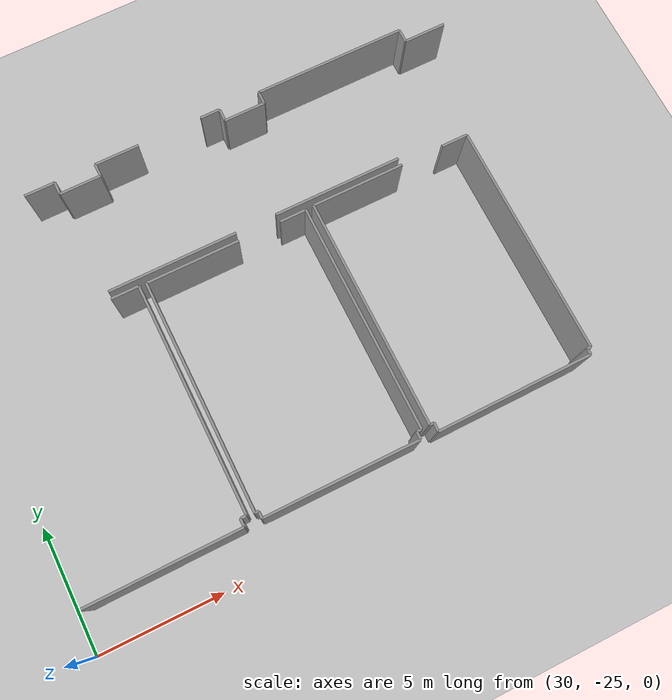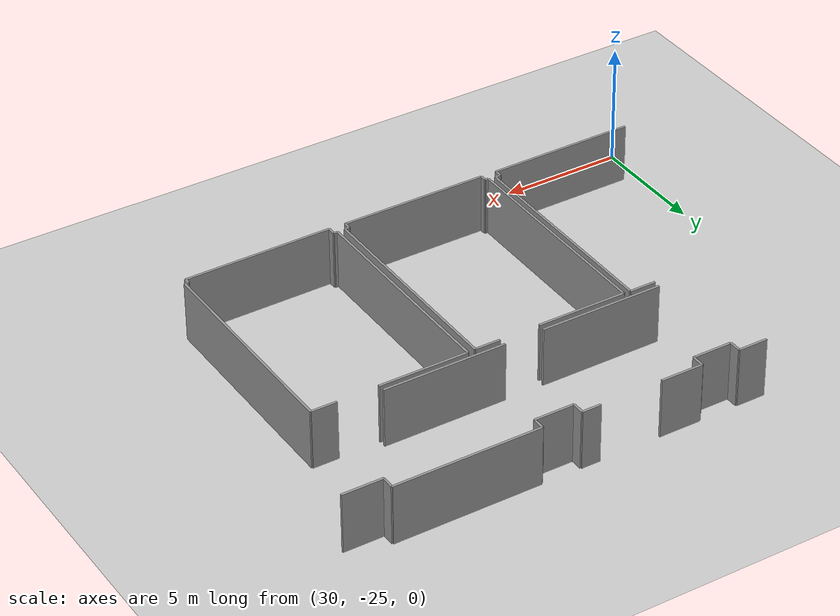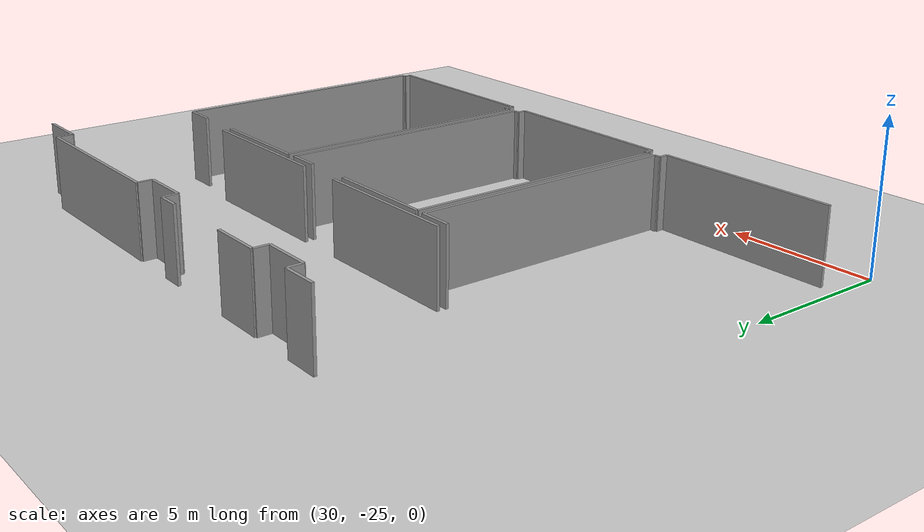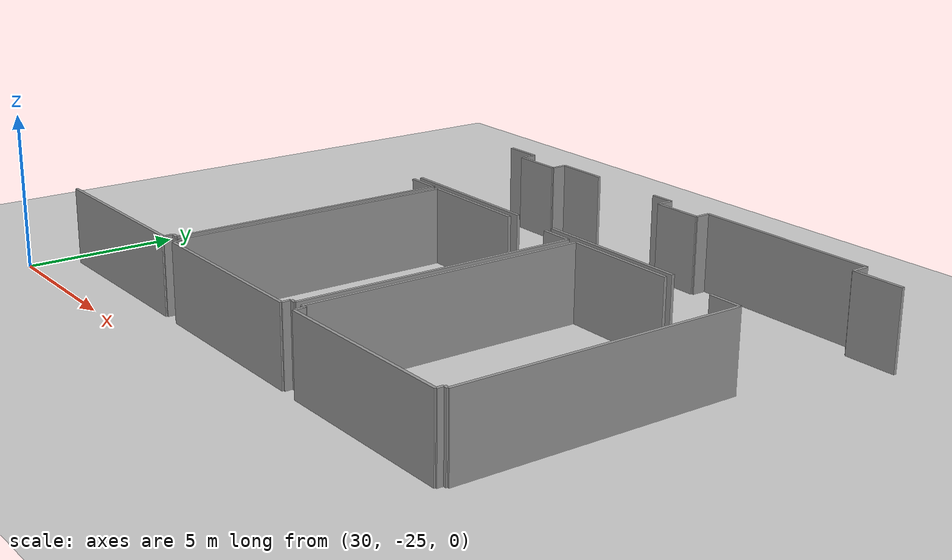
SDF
<sdf version="1.6">
 <world name="default">
  <model name="ground_plane">
   <static>1</static>
   <link name="link">
    <collision name="collision">
     <geometry><plane><normal>0 0 1</normal><size>100 100</size></plane></geometry>
     <surface><friction><ode><mu>100</mu><mu2>50</mu2></ode></friction></surface>
    </collision>
    <visual name="visual">
     <cast_shadows>0</cast_shadows>
     <geometry><plane><normal>0 0 1</normal><size>100 100</size></plane></geometry>
     <material>
      <script><uri>file://media/materials/scripts/gazebo.material</uri><name>Gazebo/Grey</name></script>
     </material>
    </visual>
   </link>
  </model>
  <model name="0510032194_A_40_1_202">
   <static>1</static>
   <link name="Wall_184">
    <collision name="Wall_184_Collision">
     <geometry><box><size>1.10249522104 0.1 2.5</size></box></geometry>
     <pose>0.551247610519 0 1.25 0 0 0</pose>
    </collision>
    <visual name="Wall_184_Visual">
     <pose>0.551247610519 0 1.25 0 0 0</pose>
     <geometry><box><size>1.10249522104 0.1 2.5</size></box></geometry>
     <material>
      <script><uri>file://media/materials/scripts/gazebo.material</uri><name>Gazebo/Grey</name></script>
      <ambient>1 1 1 1</ambient>
     </material>
    </visual>
    <pose>96.7030566299 -37.3895758315 0 0 0 0.0</pose>
   </link>
   <link name="Wall_185">
    <collision name="Wall_185_Collision">
     <geometry><box><size>9.17027073371 0.1 2.5</size></box></geometry>
     <pose>4.58513536685 0 1.25 0 0 0</pose>
    </collision>
    <visual name="Wall_185_Visual">
     <pose>4.58513536685 0 1.25 0 0 0</pose>
     <geometry><box><size>9.17027073371 0.1 2.5</size></box></geometry>
     <material>
      <script><uri>file://media/materials/scripts/gazebo.material</uri><name>Gazebo/Grey</name></script>
      <ambient>1 1 1 1</ambient>
     </material>
    </visual>
    <pose>97.8055518509 -37.3895758315 0 0 0 -1.57079632679</pose>
   </link>
   <link name="Wall_186">
    <collision name="Wall_186_Collision">
     <geometry><box><size>0.233835679946 0.1 2.5</size></box></geometry>
     <pose>0.116917839973 0 1.25 0 0 0</pose>
    </collision>
    <visual name="Wall_186_Visual">
     <pose>0.116917839973 0 1.25 0 0 0</pose>
     <geometry><box><size>0.233835679946 0.1 2.5</size></box></geometry>
     <material>
      <script><uri>file://media/materials/scripts/gazebo.material</uri><name>Gazebo/Grey</name></script>
      <ambient>1 1 1 1</ambient>
     </material>
    </visual>
    <pose>97.8055518509 -46.5598465652 0 0 0 3.14159265359</pose>
   </link>
   <link name="Wall_187">
    <collision name="Wall_187_Collision">
     <geometry><box><size>0.319571195407 0.1 2.5</size></box></geometry>
     <pose>0.159785597704 0 1.25 0 0 0</pose>
    </collision>
    <visual name="Wall_187_Visual">
     <pose>0.159785597704 0 1.25 0 0 0</pose>
     <geometry><box><size>0.319571195407 0.1 2.5</size></box></geometry>
     <material>
      <script><uri>file://media/materials/scripts/gazebo.material</uri><name>Gazebo/Grey</name></script>
      <ambient>1 1 1 1</ambient>
     </material>
    </visual>
    <pose>97.571716171 -46.5598465652 0 0 0 -1.57079632679</pose>
   </link>
   <link name="Wall_188">
    <collision name="Wall_188_Collision">
     <geometry><box><size>6.13553011448 0.1 2.5</size></box></geometry>
     <pose>3.06776505724 0 1.25 0 0 0</pose>
    </collision>
    <visual name="Wall_188_Visual">
     <pose>3.06776505724 0 1.25 0 0 0</pose>
     <geometry><box><size>6.13553011448 0.1 2.5</size></box></geometry>
     <material>
      <script><uri>file://media/materials/scripts/gazebo.material</uri><name>Gazebo/Grey</name></script>
      <ambient>1 1 1 1</ambient>
     </material>
    </visual>
    <pose>97.571716171 -46.8794177606 0 0 0 -3.13786634851</pose>
   </link>
   <link name="Wall_189">
    <collision name="Wall_189_Collision">
     <geometry><box><size>0.276131867574 0.1 2.5</size></box></geometry>
     <pose>0.138065933787 0 1.25 0 0 0</pose>
    </collision>
    <visual name="Wall_189_Visual">
     <pose>0.138065933787 0 1.25 0 0 0</pose>
     <geometry><box><size>0.276131867574 0.1 2.5</size></box></geometry>
     <material>
      <script><uri>file://media/materials/scripts/gazebo.material</uri><name>Gazebo/Grey</name></script>
      <ambient>1 1 1 1</ambient>
     </material>
    </visual>
    <pose>98.2389290046 -46.886530633 0 0 0 1.57079632679</pose>
   </link>
   <link name="Wall_190">
    <collision name="Wall_190_Collision">
     <geometry><box><size>0.143654619239 0.1 2.5</size></box></geometry>
     <pose>0.0718273096195 0 1.25 0 0 0</pose>
    </collision>
    <visual name="Wall_190_Visual">
     <pose>0.0718273096195 0 1.25 0 0 0</pose>
     <geometry><box><size>0.143654619239 0.1 2.5</size></box></geometry>
     <material>
      <script><uri>file://media/materials/scripts/gazebo.material</uri><name>Gazebo/Grey</name></script>
      <ambient>1 1 1 1</ambient>
     </material>
    </visual>
    <pose>98.2389290046 -46.6103987654 0 0 0 3.14159265359</pose>
   </link>
   <link name="Wall_191">
    <collision name="Wall_191_Collision">
     <geometry><box><size>9.19707102076 0.1 2.5</size></box></geometry>
     <pose>4.59853551038 0 1.25 0 0 0</pose>
    </collision>
    <visual name="Wall_191_Visual">
     <pose>4.59853551038 0 1.25 0 0 0</pose>
     <geometry><box><size>9.19707102076 0.1 2.5</size></box></geometry>
     <material>
      <script><uri>file://media/materials/scripts/gazebo.material</uri><name>Gazebo/Grey</name></script>
      <ambient>1 1 1 1</ambient>
     </material>
    </visual>
    <pose>98.0952743854 -46.6103987654 0 0 0 1.57079632679</pose>
   </link>
   <link name="Wall_192">
    <collision name="Wall_192_Collision">
     <geometry><box><size>3.7327338198 0.1 2.5</size></box></geometry>
     <pose>1.8663669099 0 1.25 0 0 0</pose>
    </collision>
    <visual name="Wall_192_Visual">
     <pose>1.8663669099 0 1.25 0 0 0</pose>
     <geometry><box><size>3.7327338198 0.1 2.5</size></box></geometry>
     <material>
      <script><uri>file://media/materials/scripts/gazebo.material</uri><name>Gazebo/Grey</name></script>
      <ambient>1 1 1 1</ambient>
     </material>
    </visual>
    <pose>98.0952743854 -37.4133277446 0 0 0 0.0</pose>
   </link>
   <link name="Wall_193">
    <collision name="Wall_193_Collision">
     <geometry><box><size>1.06070709573 0.1 2.5</size></box></geometry>
     <pose>0.530353547863 0 1.25 0 0 0</pose>
    </collision>
    <visual name="Wall_193_Visual">
     <pose>0.530353547863 0 1.25 0 0 0</pose>
     <geometry><box><size>1.06070709573 0.1 2.5</size></box></geometry>
     <material>
      <script><uri>file://media/materials/scripts/gazebo.material</uri><name>Gazebo/Grey</name></script>
      <ambient>1 1 1 1</ambient>
     </material>
    </visual>
    <pose>103.526206489 -37.4133277446 0 0 0 0.0</pose>
   </link>
   <link name="Wall_194">
    <collision name="Wall_194_Collision">
     <geometry><box><size>9.1720489518 0.1 2.5</size></box></geometry>
     <pose>4.5860244759 0 1.25 0 0 0</pose>
    </collision>
    <visual name="Wall_194_Visual">
     <pose>4.5860244759 0 1.25 0 0 0</pose>
     <geometry><box><size>9.1720489518 0.1 2.5</size></box></geometry>
     <material>
      <script><uri>file://media/materials/scripts/gazebo.material</uri><name>Gazebo/Grey</name></script>
      <ambient>1 1 1 1</ambient>
     </material>
    </visual>
    <pose>104.586913585 -37.4133277446 0 0 0 -1.57079632679</pose>
   </link>
   <link name="Wall_195">
    <collision name="Wall_195_Collision">
     <geometry><box><size>0.194587866202 0.1 2.5</size></box></geometry>
     <pose>0.0972939331009 0 1.25 0 0 0</pose>
    </collision>
    <visual name="Wall_195_Visual">
     <pose>0.0972939331009 0 1.25 0 0 0</pose>
     <geometry><box><size>0.194587866202 0.1 2.5</size></box></geometry>
     <material>
      <script><uri>file://media/materials/scripts/gazebo.material</uri><name>Gazebo/Grey</name></script>
      <ambient>1 1 1 1</ambient>
     </material>
    </visual>
    <pose>104.586913585 -46.5853766965 0 0 0 3.14159265359</pose>
   </link>
   <link name="Wall_196">
    <collision name="Wall_196_Collision">
     <geometry><box><size>0.297724515912 0.1 2.5</size></box></geometry>
     <pose>0.148862257956 0 1.25 0 0 0</pose>
    </collision>
    <visual name="Wall_196_Visual">
     <pose>0.148862257956 0 1.25 0 0 0</pose>
     <geometry><box><size>0.297724515912 0.1 2.5</size></box></geometry>
     <material>
      <script><uri>file://media/materials/scripts/gazebo.material</uri><name>Gazebo/Grey</name></script>
      <ambient>1 1 1 1</ambient>
     </material>
    </visual>
    <pose>104.392325719 -46.5853766965 0 0 0 -1.57079632679</pose>
   </link>
   <link name="Wall_197">
    <collision name="Wall_197_Collision">
     <geometry><box><size>6.15339766975 0.1 2.5</size></box></geometry>
     <pose>3.07669883488 0 1.25 0 0 0</pose>
    </collision>
    <visual name="Wall_197_Visual">
     <pose>3.07669883488 0 1.25 0 0 0</pose>
     <geometry><box><size>6.15339766975 0.1 2.5</size></box></geometry>
     <material>
      <script><uri>file://media/materials/scripts/gazebo.material</uri><name>Gazebo/Grey</name></script>
      <ambient>1 1 1 1</ambient>
     </material>
    </visual>
    <pose>104.392325719 -46.8831012124 0 0 0 -3.14103533209</pose>
   </link>
   <link name="Wall_198">
    <collision name="Wall_198_Collision">
     <geometry><box><size>0.342942061844 0.1 2.5</size></box></geometry>
     <pose>0.171471030922 0 1.25 0 0 0</pose>
    </collision>
    <visual name="Wall_198_Visual">
     <pose>0.171471030922 0 1.25 0 0 0</pose>
     <geometry><box><size>0.342942061844 0.1 2.5</size></box></geometry>
     <material>
      <script><uri>file://media/materials/scripts/gazebo.material</uri><name>Gazebo/Grey</name></script>
      <ambient>1 1 1 1</ambient>
     </material>
    </visual>
    <pose>105.080623138 -46.915744216 0 0 0 1.57079632679</pose>
   </link>
   <link name="Wall_199">
    <collision name="Wall_199_Collision">
     <geometry><box><size>0.165120251999 0.1 2.5</size></box></geometry>
     <pose>0.0825601259995 0 1.25 0 0 0</pose>
    </collision>
    <visual name="Wall_199_Visual">
     <pose>0.0825601259995 0 1.25 0 0 0</pose>
     <geometry><box><size>0.165120251999 0.1 2.5</size></box></geometry>
     <material>
      <script><uri>file://media/materials/scripts/gazebo.material</uri><name>Gazebo/Grey</name></script>
      <ambient>1 1 1 1</ambient>
     </material>
    </visual>
    <pose>105.080623138 -46.5728021542 0 0 0 3.14159265359</pose>
   </link>
   <link name="Wall_200">
    <collision name="Wall_200_Collision">
     <geometry><box><size>9.18830694585 0.1 2.5</size></box></geometry>
     <pose>4.59415347292 0 1.25 0 0 0</pose>
    </collision>
    <visual name="Wall_200_Visual">
     <pose>4.59415347292 0 1.25 0 0 0</pose>
     <geometry><box><size>9.18830694585 0.1 2.5</size></box></geometry>
     <material>
      <script><uri>file://media/materials/scripts/gazebo.material</uri><name>Gazebo/Grey</name></script>
      <ambient>1 1 1 1</ambient>
     </material>
    </visual>
    <pose>104.915502886 -46.5728021542 0 0 0 1.57079632679</pose>
   </link>
   <link name="Wall_201">
    <collision name="Wall_201_Collision">
     <geometry><box><size>3.73146366402 0.1 2.5</size></box></geometry>
     <pose>1.86573183201 0 1.25 0 0 0</pose>
    </collision>
    <visual name="Wall_201_Visual">
     <pose>1.86573183201 0 1.25 0 0 0</pose>
     <geometry><box><size>3.73146366402 0.1 2.5</size></box></geometry>
     <material>
      <script><uri>file://media/materials/scripts/gazebo.material</uri><name>Gazebo/Grey</name></script>
      <ambient>1 1 1 1</ambient>
     </material>
    </visual>
    <pose>104.915502886 -37.3844952083 0 0 0 0.0</pose>
   </link>
   <link name="Wall_202">
    <collision name="Wall_202_Collision">
     <geometry><box><size>1.07137640432 0.1 2.5</size></box></geometry>
     <pose>0.535688202158 0 1.25 0 0 0</pose>
    </collision>
    <visual name="Wall_202_Visual">
     <pose>0.535688202158 0 1.25 0 0 0</pose>
     <geometry><box><size>1.07137640432 0.1 2.5</size></box></geometry>
     <material>
      <script><uri>file://media/materials/scripts/gazebo.material</uri><name>Gazebo/Grey</name></script>
      <ambient>1 1 1 1</ambient>
     </material>
    </visual>
    <pose>110.35507205 -37.3844952083 0 0 0 0.0</pose>
   </link>
   <link name="Wall_203">
    <collision name="Wall_203_Collision">
     <geometry><box><size>9.25181473508 0.1 2.5</size></box></geometry>
     <pose>4.62590736754 0 1.25 0 0 0</pose>
    </collision>
    <visual name="Wall_203_Visual">
     <pose>4.62590736754 0 1.25 0 0 0</pose>
     <geometry><box><size>9.25181473508 0.1 2.5</size></box></geometry>
     <material>
      <script><uri>file://media/materials/scripts/gazebo.material</uri><name>Gazebo/Grey</name></script>
      <ambient>1 1 1 1</ambient>
     </material>
    </visual>
    <pose>111.426448454 -37.3844952083 0 0 0 -1.57079632679</pose>
   </link>
   <link name="Wall_204">
    <collision name="Wall_204_Collision">
     <geometry><box><size>0.147465086593 0.1 2.5</size></box></geometry>
     <pose>0.0737325432964 0 1.25 0 0 0</pose>
    </collision>
    <visual name="Wall_204_Visual">
     <pose>0.0737325432964 0 1.25 0 0 0</pose>
     <geometry><box><size>0.147465086593 0.1 2.5</size></box></geometry>
     <material>
      <script><uri>file://media/materials/scripts/gazebo.material</uri><name>Gazebo/Grey</name></script>
      <ambient>1 1 1 1</ambient>
     </material>
    </visual>
    <pose>111.426448454 -46.6363099434 0 0 0 3.14159265359</pose>
   </link>
   <link name="Wall_205">
    <collision name="Wall_205_Collision">
     <geometry><box><size>0.238408240771 0.1 2.5</size></box></geometry>
     <pose>0.119204120385 0 1.25 0 0 0</pose>
    </collision>
    <visual name="Wall_205_Visual">
     <pose>0.119204120385 0 1.25 0 0 0</pose>
     <geometry><box><size>0.238408240771 0.1 2.5</size></box></geometry>
     <material>
      <script><uri>file://media/materials/scripts/gazebo.material</uri><name>Gazebo/Grey</name></script>
      <ambient>1 1 1 1</ambient>
     </material>
    </visual>
    <pose>111.278983367 -46.6363099434 0 0 0 -1.57079632679</pose>
   </link>
   <link name="Wall_206">
    <collision name="Wall_206_Collision">
     <geometry><box><size>6.19849600002 0.1 2.5</size></box></geometry>
     <pose>3.09924800001 0 1.25 0 0 0</pose>
    </collision>
    <visual name="Wall_206_Visual">
     <pose>3.09924800001 0 1.25 0 0 0</pose>
     <geometry><box><size>6.19849600002 0.1 2.5</size></box></geometry>
     <material>
      <script><uri>file://media/materials/scripts/gazebo.material</uri><name>Gazebo/Grey</name></script>
      <ambient>1 1 1 1</ambient>
     </material>
    </visual>
    <pose>111.278983367 -46.8747181842 0 0 0 -3.13497389778</pose>
   </link>
   <link name="Wall_386">
    <collision name="Wall_386_Collision">
     <geometry><box><size>1.21973059996 0.1 2.5</size></box></geometry>
     <pose>0.609865299979 0 1.25 0 0 0</pose>
    </collision>
    <visual name="Wall_386_Visual">
     <pose>0.609865299979 0 1.25 0 0 0</pose>
     <geometry><box><size>1.21973059996 0.1 2.5</size></box></geometry>
     <material>
      <script><uri>file://media/materials/scripts/gazebo.material</uri><name>Gazebo/Grey</name></script>
      <ambient>1 1 1 1</ambient>
     </material>
    </visual>
    <pose>95.3931449692 -32.2751665492 0 0 0 0.0</pose>
   </link>
   <link name="Wall_387">
    <collision name="Wall_387_Collision">
     <geometry><box><size>0.508951422892 0.1 2.5</size></box></geometry>
     <pose>0.254475711446 0 1.25 0 0 0</pose>
    </collision>
    <visual name="Wall_387_Visual">
     <pose>0.254475711446 0 1.25 0 0 0</pose>
     <geometry><box><size>0.508951422892 0.1 2.5</size></box></geometry>
     <material>
      <script><uri>file://media/materials/scripts/gazebo.material</uri><name>Gazebo/Grey</name></script>
      <ambient>1 1 1 1</ambient>
     </material>
    </visual>
    <pose>96.6128755692 -32.2751665492 0 0 0 -1.57079632679</pose>
   </link>
   <link name="Wall_388">
    <collision name="Wall_388_Collision">
     <geometry><box><size>1.65196461346 0.1 2.5</size></box></geometry>
     <pose>0.82598230673 0 1.25 0 0 0</pose>
    </collision>
    <visual name="Wall_388_Visual">
     <pose>0.82598230673 0 1.25 0 0 0</pose>
     <geometry><box><size>1.65196461346 0.1 2.5</size></box></geometry>
     <material>
      <script><uri>file://media/materials/scripts/gazebo.material</uri><name>Gazebo/Grey</name></script>
      <ambient>1 1 1 1</ambient>
     </material>
    </visual>
    <pose>96.6128755692 -32.7841179721 0 0 0 0.0</pose>
   </link>
   <link name="Wall_389">
    <collision name="Wall_389_Collision">
     <geometry><box><size>0.518604606855 0.1 2.5</size></box></geometry>
     <pose>0.259302303428 0 1.25 0 0 0</pose>
    </collision>
    <visual name="Wall_389_Visual">
     <pose>0.259302303428 0 1.25 0 0 0</pose>
     <geometry><box><size>0.518604606855 0.1 2.5</size></box></geometry>
     <material>
      <script><uri>file://media/materials/scripts/gazebo.material</uri><name>Gazebo/Grey</name></script>
      <ambient>1 1 1 1</ambient>
     </material>
    </visual>
    <pose>98.2648401826 -32.7841179721 0 0 0 1.57079632679</pose>
   </link>
   <link name="Wall_390">
    <collision name="Wall_390_Collision">
     <geometry><box><size>1.7744076311 0.1 2.5</size></box></geometry>
     <pose>0.887203815548 0 1.25 0 0 0</pose>
    </collision>
    <visual name="Wall_390_Visual">
     <pose>0.887203815548 0 1.25 0 0 0</pose>
     <geometry><box><size>1.7744076311 0.1 2.5</size></box></geometry>
     <material>
      <script><uri>file://media/materials/scripts/gazebo.material</uri><name>Gazebo/Grey</name></script>
      <ambient>1 1 1 1</ambient>
     </material>
    </visual>
    <pose>98.2648401826 -32.2655133652 0 0 0 0.0</pose>
   </link>
   <link name="Wall_391">
    <collision name="Wall_391_Collision">
     <geometry><box><size>0.79130705381 0.1 2.5</size></box></geometry>
     <pose>0.395653526905 0 1.25 0 0 0</pose>
    </collision>
    <visual name="Wall_391_Visual">
     <pose>0.395653526905 0 1.25 0 0 0</pose>
     <geometry><box><size>0.79130705381 0.1 2.5</size></box></geometry>
     <material>
      <script><uri>file://media/materials/scripts/gazebo.material</uri><name>Gazebo/Grey</name></script>
      <ambient>1 1 1 1</ambient>
     </material>
    </visual>
    <pose>102.641924032 -32.2655133652 0 0 0 0.0</pose>
   </link>
   <link name="Wall_392">
    <collision name="Wall_392_Collision">
     <geometry><box><size>0.514286077187 0.1 2.5</size></box></geometry>
     <pose>0.257143038594 0 1.25 0 0 0</pose>
    </collision>
    <visual name="Wall_392_Visual">
     <pose>0.257143038594 0 1.25 0 0 0</pose>
     <geometry><box><size>0.514286077187 0.1 2.5</size></box></geometry>
     <material>
      <script><uri>file://media/materials/scripts/gazebo.material</uri><name>Gazebo/Grey</name></script>
      <ambient>1 1 1 1</ambient>
     </material>
    </visual>
    <pose>103.433231086 -32.2655133652 0 0 0 -1.57079632679</pose>
   </link>
   <link name="Wall_393">
    <collision name="Wall_393_Collision">
     <geometry><box><size>1.66072868837 0.1 2.5</size></box></geometry>
     <pose>0.830364344187 0 1.25 0 0 0</pose>
    </collision>
    <visual name="Wall_393_Visual">
     <pose>0.830364344187 0 1.25 0 0 0</pose>
     <geometry><box><size>1.66072868837 0.1 2.5</size></box></geometry>
     <material>
      <script><uri>file://media/materials/scripts/gazebo.material</uri><name>Gazebo/Grey</name></script>
      <ambient>1 1 1 1</ambient>
     </material>
    </visual>
    <pose>103.433231086 -32.7797994424 0 0 0 0.0</pose>
   </link>
   <link name="Wall_394">
    <collision name="Wall_394_Collision">
     <geometry><box><size>0.505267971117 0.1 2.5</size></box></geometry>
     <pose>0.252633985558 0 1.25 0 0 0</pose>
    </collision>
    <visual name="Wall_394_Visual">
     <pose>0.252633985558 0 1.25 0 0 0</pose>
     <geometry><box><size>0.505267971117 0.1 2.5</size></box></geometry>
     <material>
      <script><uri>file://media/materials/scripts/gazebo.material</uri><name>Gazebo/Grey</name></script>
      <ambient>1 1 1 1</ambient>
     </material>
    </visual>
    <pose>105.093959774 -32.7797994424 0 0 0 1.57079632679</pose>
   </link>
   <link name="Wall_395">
    <collision name="Wall_395_Collision">
     <geometry><box><size>6.1156730873 0.1 2.5</size></box></geometry>
     <pose>3.05783654365 0 1.25 0 0 0</pose>
    </collision>
    <visual name="Wall_395_Visual">
     <pose>3.05783654365 0 1.25 0 0 0</pose>
     <geometry><box><size>6.1156730873 0.1 2.5</size></box></geometry>
     <material>
      <script><uri>file://media/materials/scripts/gazebo.material</uri><name>Gazebo/Grey</name></script>
      <ambient>1 1 1 1</ambient>
     </material>
    </visual>
    <pose>105.093959774 -32.2745314713 0 0 0 0.0</pose>
   </link>
   <link name="Wall_396">
    <collision name="Wall_396_Collision">
     <geometry><box><size>0.538419037095 0.1 2.5</size></box></geometry>
     <pose>0.269209518547 0 1.25 0 0 0</pose>
    </collision>
    <visual name="Wall_396_Visual">
     <pose>0.269209518547 0 1.25 0 0 0</pose>
     <geometry><box><size>0.538419037095 0.1 2.5</size></box></geometry>
     <material>
      <script><uri>file://media/materials/scripts/gazebo.material</uri><name>Gazebo/Grey</name></script>
      <ambient>1 1 1 1</ambient>
     </material>
    </visual>
    <pose>111.209632861 -32.2745314713 0 0 0 -1.57079632679</pose>
   </link>
   <link name="Wall_397">
    <collision name="Wall_397_Collision">
     <geometry><box><size>1.69197452067 0.1 2.5</size></box></geometry>
     <pose>0.845987260337 0 1.25 0 0 0</pose>
    </collision>
    <visual name="Wall_397_Visual">
     <pose>0.845987260337 0 1.25 0 0 0</pose>
     <geometry><box><size>1.69197452067 0.1 2.5</size></box></geometry>
     <material>
      <script><uri>file://media/materials/scripts/gazebo.material</uri><name>Gazebo/Grey</name></script>
      <ambient>1 1 1 1</ambient>
     </material>
    </visual>
    <pose>111.209632861 -32.8129505084 0 0 0 0.0</pose>
   </link>
   <link name="Wall_422">
    <collision name="Wall_422_Collision">
     <geometry><box><size>5.14082852262 0.1 2.5</size></box></geometry>
     <pose>2.57041426131 0 1.25 0 0 0</pose>
    </collision>
    <visual name="Wall_422_Visual">
     <pose>2.57041426131 0 1.25 0 0 0</pose>
     <geometry><box><size>5.14082852262 0.1 2.5</size></box></geometry>
     <material>
      <script><uri>file://media/materials/scripts/gazebo.material</uri><name>Gazebo/Grey</name></script>
      <ambient>1 1 1 1</ambient>
     </material>
    </visual>
    <pose>108.637059335 -37.0964238764 0 0 0 3.14159265359</pose>
   </link>
   <link name="Wall_423">
    <collision name="Wall_423_Collision">
     <geometry><box><size>5.13511282159 0.1 2.5</size></box></geometry>
     <pose>2.56755641079 0 1.25 0 0 0</pose>
    </collision>
    <visual name="Wall_423_Visual">
     <pose>2.56755641079 0 1.25 0 0 0</pose>
     <geometry><box><size>5.13511282159 0.1 2.5</size></box></geometry>
     <material>
      <script><uri>file://media/materials/scripts/gazebo.material</uri><name>Gazebo/Grey</name></script>
      <ambient>1 1 1 1</ambient>
     </material>
    </visual>
    <pose>101.864334661 -37.0964238764 0 0 0 3.14159265359</pose>
   </link>
   <pose>-60.9 23.465744216 0 0 0 0</pose>
  </model>
 </world>
</sdf>
